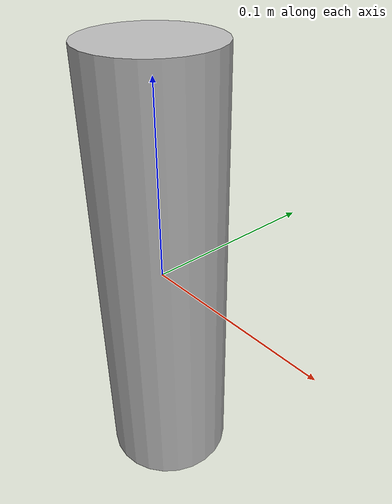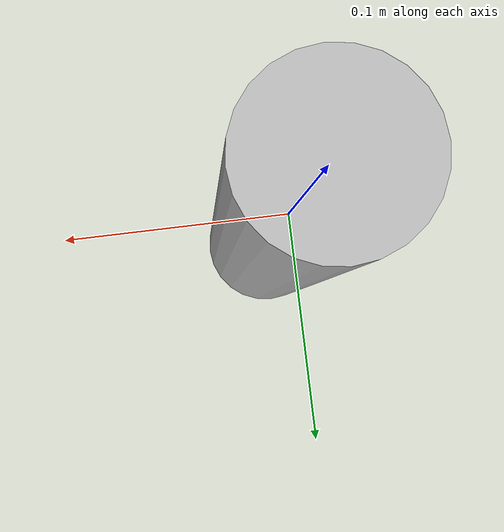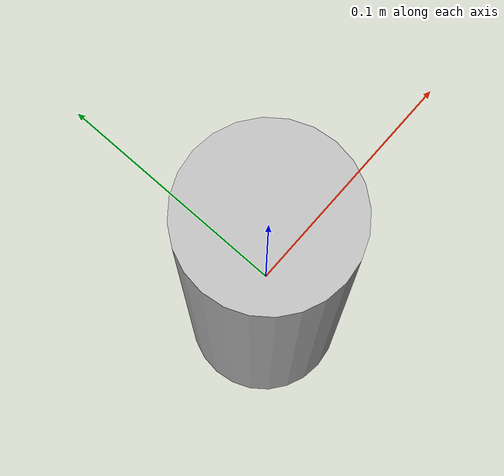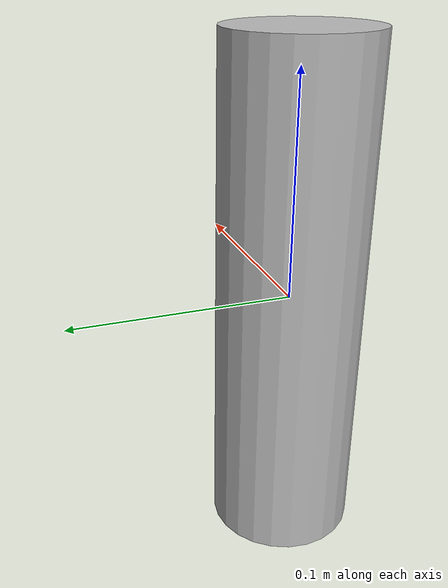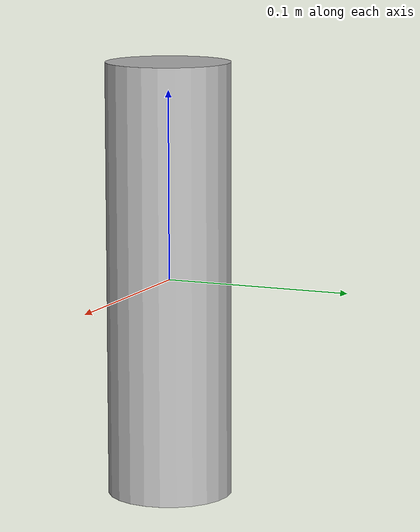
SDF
<?xml version="1.0"?>
<sdf version="1.4">
	<model name="thin beer">
		<link name="link">
			<pose>0 0 0 0 0 0</pose>
			<inertial>
				<mass>0.390</mass>
				<inertia>
					<ixx>0.00058</ixx>
					<ixy>0</ixy>
					<ixz>0</ixz>
					<iyy>0.00058</iyy>
					<iyz>0</iyz>
					<izz>0.00019</izz>
				</inertia>
			</inertial>
			<collision name="collision">
				<geometry>
					<cylinder>
						<radius>0.033000</radius>
						<length>0.230000</length>
					</cylinder>
				</geometry>
			</collision>
			<visual name="visual">
				<geometry>
					<cylinder>
						<radius>0.033000</radius>
						<length>0.230000</length>
					</cylinder>
				</geometry>
				<material>
					<script>
						<uri>model://thin_beer/materials/scripts</uri>
						<uri>model://thin_beer/materials/textures</uri>
						<name>Beer/Diffuse</name>
					</script>
				</material>
			</visual>
		</link>
	</model>
</sdf>
